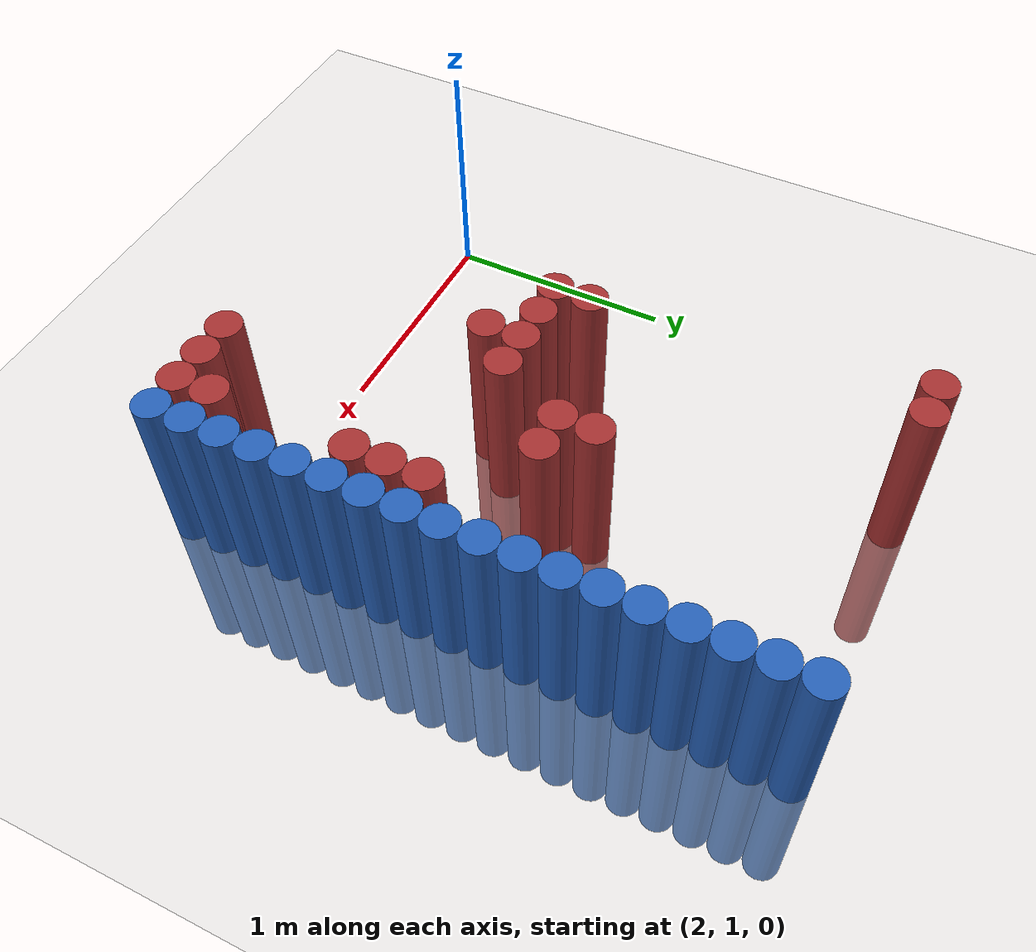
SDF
<sdf version="1.6">
 <world name="default">
  <model name="ground_plane">
   <static>1</static>
   <link name="link">
    <collision name="collision">
     <geometry><plane><normal>0 0 1</normal><size>100 100</size></plane></geometry>
     <surface><friction><ode><mu>100</mu><mu2>50</mu2></ode></friction></surface>
    </collision>
    <visual name="visual">
     <cast_shadows>0</cast_shadows>
     <geometry><plane><normal>0 0 1</normal><size>100 100</size></plane></geometry>
     <material>
      <script><uri>file://media/materials/scripts/gazebo.material</uri><name>Gazebo/Grey</name></script>
     </material>
    </visual>
   </link>
  </model>
  <model name="unit_cylinder_126">
   <static>1</static>
   <pose>3.925000 0.925000 0.000000 0.000000 0.000000 0.000000</pose>
   <link name="link">
    <inertial>
     <mass>1</mass>
     <inertia><ixx>0.145833</ixx><ixy>0</ixy><ixz>0</ixz><iyy>0.145833</iyy><iyz>0</iyz><izz>0.125</izz></inertia>
    </inertial>
    <collision name="collision">
     <geometry><cylinder><radius>0.075000</radius><length>1.5</length></cylinder></geometry>
    </collision>
    <visual name="visual">
     <geometry><cylinder><radius>0.075000</radius><length>1.5</length></cylinder></geometry>
     <material>
      <ambient>0.152000 0.379000 0.720000 1</ambient>
      <diffuse>0.152000 0.379000 0.720000 1</diffuse>
     </material>
     <material>
      <script><name>Gazebo/Grey</name><uri>file://media/materials/scripts/gazebo.material</uri></script>
     </material>
    </visual>
   </link>
  </model>
  <model name="unit_cylinder_128">
   <static>1</static>
   <pose>3.925000 1.075000 0.000000 0.000000 0.000000 0.000000</pose>
   <link name="link">
    <inertial>
     <mass>1</mass>
     <inertia><ixx>0.145833</ixx><ixy>0</ixy><ixz>0</ixz><iyy>0.145833</iyy><iyz>0</iyz><izz>0.125</izz></inertia>
    </inertial>
    <collision name="collision">
     <geometry><cylinder><radius>0.075000</radius><length>1.5</length></cylinder></geometry>
    </collision>
    <visual name="visual">
     <geometry><cylinder><radius>0.075000</radius><length>1.5</length></cylinder></geometry>
     <material>
      <ambient>0.152000 0.379000 0.720000 1</ambient>
      <diffuse>0.152000 0.379000 0.720000 1</diffuse>
     </material>
     <material>
      <script><name>Gazebo/Grey</name><uri>file://media/materials/scripts/gazebo.material</uri></script>
     </material>
    </visual>
   </link>
  </model>
  <model name="unit_cylinder_130">
   <static>1</static>
   <pose>3.925000 1.225000 0.000000 0.000000 0.000000 0.000000</pose>
   <link name="link">
    <inertial>
     <mass>1</mass>
     <inertia><ixx>0.145833</ixx><ixy>0</ixy><ixz>0</ixz><iyy>0.145833</iyy><iyz>0</iyz><izz>0.125</izz></inertia>
    </inertial>
    <collision name="collision">
     <geometry><cylinder><radius>0.075000</radius><length>1.5</length></cylinder></geometry>
    </collision>
    <visual name="visual">
     <geometry><cylinder><radius>0.075000</radius><length>1.5</length></cylinder></geometry>
     <material>
      <ambient>0.152000 0.379000 0.720000 1</ambient>
      <diffuse>0.152000 0.379000 0.720000 1</diffuse>
     </material>
     <material>
      <script><name>Gazebo/Grey</name><uri>file://media/materials/scripts/gazebo.material</uri></script>
     </material>
    </visual>
   </link>
  </model>
  <model name="unit_cylinder_132">
   <static>1</static>
   <pose>3.925000 1.375000 0.000000 0.000000 0.000000 0.000000</pose>
   <link name="link">
    <inertial>
     <mass>1</mass>
     <inertia><ixx>0.145833</ixx><ixy>0</ixy><ixz>0</ixz><iyy>0.145833</iyy><iyz>0</iyz><izz>0.125</izz></inertia>
    </inertial>
    <collision name="collision">
     <geometry><cylinder><radius>0.075000</radius><length>1.5</length></cylinder></geometry>
    </collision>
    <visual name="visual">
     <geometry><cylinder><radius>0.075000</radius><length>1.5</length></cylinder></geometry>
     <material>
      <ambient>0.152000 0.379000 0.720000 1</ambient>
      <diffuse>0.152000 0.379000 0.720000 1</diffuse>
     </material>
     <material>
      <script><name>Gazebo/Grey</name><uri>file://media/materials/scripts/gazebo.material</uri></script>
     </material>
    </visual>
   </link>
  </model>
  <model name="unit_cylinder_134">
   <static>1</static>
   <pose>3.925000 1.525000 0.000000 0.000000 0.000000 0.000000</pose>
   <link name="link">
    <inertial>
     <mass>1</mass>
     <inertia><ixx>0.145833</ixx><ixy>0</ixy><ixz>0</ixz><iyy>0.145833</iyy><iyz>0</iyz><izz>0.125</izz></inertia>
    </inertial>
    <collision name="collision">
     <geometry><cylinder><radius>0.075000</radius><length>1.5</length></cylinder></geometry>
    </collision>
    <visual name="visual">
     <geometry><cylinder><radius>0.075000</radius><length>1.5</length></cylinder></geometry>
     <material>
      <ambient>0.152000 0.379000 0.720000 1</ambient>
      <diffuse>0.152000 0.379000 0.720000 1</diffuse>
     </material>
     <material>
      <script><name>Gazebo/Grey</name><uri>file://media/materials/scripts/gazebo.material</uri></script>
     </material>
    </visual>
   </link>
  </model>
  <model name="unit_cylinder_136">
   <static>1</static>
   <pose>3.925000 1.675000 0.000000 0.000000 0.000000 0.000000</pose>
   <link name="link">
    <inertial>
     <mass>1</mass>
     <inertia><ixx>0.145833</ixx><ixy>0</ixy><ixz>0</ixz><iyy>0.145833</iyy><iyz>0</iyz><izz>0.125</izz></inertia>
    </inertial>
    <collision name="collision">
     <geometry><cylinder><radius>0.075000</radius><length>1.5</length></cylinder></geometry>
    </collision>
    <visual name="visual">
     <geometry><cylinder><radius>0.075000</radius><length>1.5</length></cylinder></geometry>
     <material>
      <ambient>0.152000 0.379000 0.720000 1</ambient>
      <diffuse>0.152000 0.379000 0.720000 1</diffuse>
     </material>
     <material>
      <script><name>Gazebo/Grey</name><uri>file://media/materials/scripts/gazebo.material</uri></script>
     </material>
    </visual>
   </link>
  </model>
  <model name="unit_cylinder_138">
   <static>1</static>
   <pose>3.925000 1.825000 0.000000 0.000000 0.000000 0.000000</pose>
   <link name="link">
    <inertial>
     <mass>1</mass>
     <inertia><ixx>0.145833</ixx><ixy>0</ixy><ixz>0</ixz><iyy>0.145833</iyy><iyz>0</iyz><izz>0.125</izz></inertia>
    </inertial>
    <collision name="collision">
     <geometry><cylinder><radius>0.075000</radius><length>1.5</length></cylinder></geometry>
    </collision>
    <visual name="visual">
     <geometry><cylinder><radius>0.075000</radius><length>1.5</length></cylinder></geometry>
     <material>
      <ambient>0.152000 0.379000 0.720000 1</ambient>
      <diffuse>0.152000 0.379000 0.720000 1</diffuse>
     </material>
     <material>
      <script><name>Gazebo/Grey</name><uri>file://media/materials/scripts/gazebo.material</uri></script>
     </material>
    </visual>
   </link>
  </model>
  <model name="unit_cylinder_140">
   <static>1</static>
   <pose>3.925000 1.975000 0.000000 0.000000 0.000000 0.000000</pose>
   <link name="link">
    <inertial>
     <mass>1</mass>
     <inertia><ixx>0.145833</ixx><ixy>0</ixy><ixz>0</ixz><iyy>0.145833</iyy><iyz>0</iyz><izz>0.125</izz></inertia>
    </inertial>
    <collision name="collision">
     <geometry><cylinder><radius>0.075000</radius><length>1.5</length></cylinder></geometry>
    </collision>
    <visual name="visual">
     <geometry><cylinder><radius>0.075000</radius><length>1.5</length></cylinder></geometry>
     <material>
      <ambient>0.152000 0.379000 0.720000 1</ambient>
      <diffuse>0.152000 0.379000 0.720000 1</diffuse>
     </material>
     <material>
      <script><name>Gazebo/Grey</name><uri>file://media/materials/scripts/gazebo.material</uri></script>
     </material>
    </visual>
   </link>
  </model>
  <model name="unit_cylinder_142">
   <static>1</static>
   <pose>3.925000 2.125000 0.000000 0.000000 0.000000 0.000000</pose>
   <link name="link">
    <inertial>
     <mass>1</mass>
     <inertia><ixx>0.145833</ixx><ixy>0</ixy><ixz>0</ixz><iyy>0.145833</iyy><iyz>0</iyz><izz>0.125</izz></inertia>
    </inertial>
    <collision name="collision">
     <geometry><cylinder><radius>0.075000</radius><length>1.5</length></cylinder></geometry>
    </collision>
    <visual name="visual">
     <geometry><cylinder><radius>0.075000</radius><length>1.5</length></cylinder></geometry>
     <material>
      <ambient>0.152000 0.379000 0.720000 1</ambient>
      <diffuse>0.152000 0.379000 0.720000 1</diffuse>
     </material>
     <material>
      <script><name>Gazebo/Grey</name><uri>file://media/materials/scripts/gazebo.material</uri></script>
     </material>
    </visual>
   </link>
  </model>
  <model name="unit_cylinder_144">
   <static>1</static>
   <pose>3.925000 2.275000 0.000000 0.000000 0.000000 0.000000</pose>
   <link name="link">
    <inertial>
     <mass>1</mass>
     <inertia><ixx>0.145833</ixx><ixy>0</ixy><ixz>0</ixz><iyy>0.145833</iyy><iyz>0</iyz><izz>0.125</izz></inertia>
    </inertial>
    <collision name="collision">
     <geometry><cylinder><radius>0.075000</radius><length>1.5</length></cylinder></geometry>
    </collision>
    <visual name="visual">
     <geometry><cylinder><radius>0.075000</radius><length>1.5</length></cylinder></geometry>
     <material>
      <ambient>0.152000 0.379000 0.720000 1</ambient>
      <diffuse>0.152000 0.379000 0.720000 1</diffuse>
     </material>
     <material>
      <script><name>Gazebo/Grey</name><uri>file://media/materials/scripts/gazebo.material</uri></script>
     </material>
    </visual>
   </link>
  </model>
  <model name="unit_cylinder_146">
   <static>1</static>
   <pose>3.925000 2.425000 0.000000 0.000000 0.000000 0.000000</pose>
   <link name="link">
    <inertial>
     <mass>1</mass>
     <inertia><ixx>0.145833</ixx><ixy>0</ixy><ixz>0</ixz><iyy>0.145833</iyy><iyz>0</iyz><izz>0.125</izz></inertia>
    </inertial>
    <collision name="collision">
     <geometry><cylinder><radius>0.075000</radius><length>1.5</length></cylinder></geometry>
    </collision>
    <visual name="visual">
     <geometry><cylinder><radius>0.075000</radius><length>1.5</length></cylinder></geometry>
     <material>
      <ambient>0.152000 0.379000 0.720000 1</ambient>
      <diffuse>0.152000 0.379000 0.720000 1</diffuse>
     </material>
     <material>
      <script><name>Gazebo/Grey</name><uri>file://media/materials/scripts/gazebo.material</uri></script>
     </material>
    </visual>
   </link>
  </model>
  <model name="unit_cylinder_148">
   <static>1</static>
   <pose>3.925000 2.575000 0.000000 0.000000 0.000000 0.000000</pose>
   <link name="link">
    <inertial>
     <mass>1</mass>
     <inertia><ixx>0.145833</ixx><ixy>0</ixy><ixz>0</ixz><iyy>0.145833</iyy><iyz>0</iyz><izz>0.125</izz></inertia>
    </inertial>
    <collision name="collision">
     <geometry><cylinder><radius>0.075000</radius><length>1.5</length></cylinder></geometry>
    </collision>
    <visual name="visual">
     <geometry><cylinder><radius>0.075000</radius><length>1.5</length></cylinder></geometry>
     <material>
      <ambient>0.152000 0.379000 0.720000 1</ambient>
      <diffuse>0.152000 0.379000 0.720000 1</diffuse>
     </material>
     <material>
      <script><name>Gazebo/Grey</name><uri>file://media/materials/scripts/gazebo.material</uri></script>
     </material>
    </visual>
   </link>
  </model>
  <model name="unit_cylinder_150">
   <static>1</static>
   <pose>3.925000 2.725000 0.000000 0.000000 0.000000 0.000000</pose>
   <link name="link">
    <inertial>
     <mass>1</mass>
     <inertia><ixx>0.145833</ixx><ixy>0</ixy><ixz>0</ixz><iyy>0.145833</iyy><iyz>0</iyz><izz>0.125</izz></inertia>
    </inertial>
    <collision name="collision">
     <geometry><cylinder><radius>0.075000</radius><length>1.5</length></cylinder></geometry>
    </collision>
    <visual name="visual">
     <geometry><cylinder><radius>0.075000</radius><length>1.5</length></cylinder></geometry>
     <material>
      <ambient>0.152000 0.379000 0.720000 1</ambient>
      <diffuse>0.152000 0.379000 0.720000 1</diffuse>
     </material>
     <material>
      <script><name>Gazebo/Grey</name><uri>file://media/materials/scripts/gazebo.material</uri></script>
     </material>
    </visual>
   </link>
  </model>
  <model name="unit_cylinder_152">
   <static>1</static>
   <pose>3.925000 2.875000 0.000000 0.000000 0.000000 0.000000</pose>
   <link name="link">
    <inertial>
     <mass>1</mass>
     <inertia><ixx>0.145833</ixx><ixy>0</ixy><ixz>0</ixz><iyy>0.145833</iyy><iyz>0</iyz><izz>0.125</izz></inertia>
    </inertial>
    <collision name="collision">
     <geometry><cylinder><radius>0.075000</radius><length>1.5</length></cylinder></geometry>
    </collision>
    <visual name="visual">
     <geometry><cylinder><radius>0.075000</radius><length>1.5</length></cylinder></geometry>
     <material>
      <ambient>0.152000 0.379000 0.720000 1</ambient>
      <diffuse>0.152000 0.379000 0.720000 1</diffuse>
     </material>
     <material>
      <script><name>Gazebo/Grey</name><uri>file://media/materials/scripts/gazebo.material</uri></script>
     </material>
    </visual>
   </link>
  </model>
  <model name="unit_cylinder_154">
   <static>1</static>
   <pose>3.925000 3.025000 0.000000 0.000000 0.000000 0.000000</pose>
   <link name="link">
    <inertial>
     <mass>1</mass>
     <inertia><ixx>0.145833</ixx><ixy>0</ixy><ixz>0</ixz><iyy>0.145833</iyy><iyz>0</iyz><izz>0.125</izz></inertia>
    </inertial>
    <collision name="collision">
     <geometry><cylinder><radius>0.075000</radius><length>1.5</length></cylinder></geometry>
    </collision>
    <visual name="visual">
     <geometry><cylinder><radius>0.075000</radius><length>1.5</length></cylinder></geometry>
     <material>
      <ambient>0.152000 0.379000 0.720000 1</ambient>
      <diffuse>0.152000 0.379000 0.720000 1</diffuse>
     </material>
     <material>
      <script><name>Gazebo/Grey</name><uri>file://media/materials/scripts/gazebo.material</uri></script>
     </material>
    </visual>
   </link>
  </model>
  <model name="unit_cylinder_156">
   <static>1</static>
   <pose>3.925000 3.175000 0.000000 0.000000 0.000000 0.000000</pose>
   <link name="link">
    <inertial>
     <mass>1</mass>
     <inertia><ixx>0.145833</ixx><ixy>0</ixy><ixz>0</ixz><iyy>0.145833</iyy><iyz>0</iyz><izz>0.125</izz></inertia>
    </inertial>
    <collision name="collision">
     <geometry><cylinder><radius>0.075000</radius><length>1.5</length></cylinder></geometry>
    </collision>
    <visual name="visual">
     <geometry><cylinder><radius>0.075000</radius><length>1.5</length></cylinder></geometry>
     <material>
      <ambient>0.152000 0.379000 0.720000 1</ambient>
      <diffuse>0.152000 0.379000 0.720000 1</diffuse>
     </material>
     <material>
      <script><name>Gazebo/Grey</name><uri>file://media/materials/scripts/gazebo.material</uri></script>
     </material>
    </visual>
   </link>
  </model>
  <model name="unit_cylinder_158">
   <static>1</static>
   <pose>3.925000 3.325000 0.000000 0.000000 0.000000 0.000000</pose>
   <link name="link">
    <inertial>
     <mass>1</mass>
     <inertia><ixx>0.145833</ixx><ixy>0</ixy><ixz>0</ixz><iyy>0.145833</iyy><iyz>0</iyz><izz>0.125</izz></inertia>
    </inertial>
    <collision name="collision">
     <geometry><cylinder><radius>0.075000</radius><length>1.5</length></cylinder></geometry>
    </collision>
    <visual name="visual">
     <geometry><cylinder><radius>0.075000</radius><length>1.5</length></cylinder></geometry>
     <material>
      <ambient>0.152000 0.379000 0.720000 1</ambient>
      <diffuse>0.152000 0.379000 0.720000 1</diffuse>
     </material>
     <material>
      <script><name>Gazebo/Grey</name><uri>file://media/materials/scripts/gazebo.material</uri></script>
     </material>
    </visual>
   </link>
  </model>
  <model name="unit_cylinder_573">
   <static>1</static>
   <pose>2.575000 3.325000 0.000000 0.000000 0.000000 0.000000</pose>
   <link name="link">
    <inertial>
     <mass>1</mass>
     <inertia><ixx>0.145833</ixx><ixy>0</ixy><ixz>0</ixz><iyy>0.145833</iyy><iyz>0</iyz><izz>0.125</izz></inertia>
    </inertial>
    <collision name="collision">
     <geometry><cylinder><radius>0.075000</radius><length>1.5</length></cylinder></geometry>
    </collision>
    <visual name="visual">
     <geometry><cylinder><radius>0.075000</radius><length>1.5</length></cylinder></geometry>
     <material>
      <ambient>0.648000 0.192000 0.192000 1</ambient>
      <diffuse>0.648000 0.192000 0.192000 1</diffuse>
     </material>
     <material>
      <script><name>Gazebo/Grey</name><uri>file://media/materials/scripts/gazebo.material</uri></script>
     </material>
    </visual>
   </link>
  </model>
  <model name="unit_cylinder_575">
   <static>1</static>
   <pose>2.725000 1.825000 0.000000 0.000000 0.000000 0.000000</pose>
   <link name="link">
    <inertial>
     <mass>1</mass>
     <inertia><ixx>0.145833</ixx><ixy>0</ixy><ixz>0</ixz><iyy>0.145833</iyy><iyz>0</iyz><izz>0.125</izz></inertia>
    </inertial>
    <collision name="collision">
     <geometry><cylinder><radius>0.075000</radius><length>1.5</length></cylinder></geometry>
    </collision>
    <visual name="visual">
     <geometry><cylinder><radius>0.075000</radius><length>1.5</length></cylinder></geometry>
     <material>
      <ambient>0.648000 0.192000 0.192000 1</ambient>
      <diffuse>0.648000 0.192000 0.192000 1</diffuse>
     </material>
     <material>
      <script><name>Gazebo/Grey</name><uri>file://media/materials/scripts/gazebo.material</uri></script>
     </material>
    </visual>
   </link>
  </model>
  <model name="unit_cylinder_576">
   <static>1</static>
   <pose>2.725000 1.975000 0.000000 0.000000 0.000000 0.000000</pose>
   <link name="link">
    <inertial>
     <mass>1</mass>
     <inertia><ixx>0.145833</ixx><ixy>0</ixy><ixz>0</ixz><iyy>0.145833</iyy><iyz>0</iyz><izz>0.125</izz></inertia>
    </inertial>
    <collision name="collision">
     <geometry><cylinder><radius>0.075000</radius><length>1.5</length></cylinder></geometry>
    </collision>
    <visual name="visual">
     <geometry><cylinder><radius>0.075000</radius><length>1.5</length></cylinder></geometry>
     <material>
      <ambient>0.648000 0.192000 0.192000 1</ambient>
      <diffuse>0.648000 0.192000 0.192000 1</diffuse>
     </material>
     <material>
      <script><name>Gazebo/Grey</name><uri>file://media/materials/scripts/gazebo.material</uri></script>
     </material>
    </visual>
   </link>
  </model>
  <model name="unit_cylinder_577">
   <static>1</static>
   <pose>2.725000 3.325000 0.000000 0.000000 0.000000 0.000000</pose>
   <link name="link">
    <inertial>
     <mass>1</mass>
     <inertia><ixx>0.145833</ixx><ixy>0</ixy><ixz>0</ixz><iyy>0.145833</iyy><iyz>0</iyz><izz>0.125</izz></inertia>
    </inertial>
    <collision name="collision">
     <geometry><cylinder><radius>0.075000</radius><length>1.5</length></cylinder></geometry>
    </collision>
    <visual name="visual">
     <geometry><cylinder><radius>0.075000</radius><length>1.5</length></cylinder></geometry>
     <material>
      <ambient>0.648000 0.192000 0.192000 1</ambient>
      <diffuse>0.648000 0.192000 0.192000 1</diffuse>
     </material>
     <material>
      <script><name>Gazebo/Grey</name><uri>file://media/materials/scripts/gazebo.material</uri></script>
     </material>
    </visual>
   </link>
  </model>
  <model name="unit_cylinder_580">
   <static>1</static>
   <pose>2.875000 1.825000 0.000000 0.000000 0.000000 0.000000</pose>
   <link name="link">
    <inertial>
     <mass>1</mass>
     <inertia><ixx>0.145833</ixx><ixy>0</ixy><ixz>0</ixz><iyy>0.145833</iyy><iyz>0</iyz><izz>0.125</izz></inertia>
    </inertial>
    <collision name="collision">
     <geometry><cylinder><radius>0.075000</radius><length>1.5</length></cylinder></geometry>
    </collision>
    <visual name="visual">
     <geometry><cylinder><radius>0.075000</radius><length>1.5</length></cylinder></geometry>
     <material>
      <ambient>0.648000 0.192000 0.192000 1</ambient>
      <diffuse>0.648000 0.192000 0.192000 1</diffuse>
     </material>
     <material>
      <script><name>Gazebo/Grey</name><uri>file://media/materials/scripts/gazebo.material</uri></script>
     </material>
    </visual>
   </link>
  </model>
  <model name="unit_cylinder_584">
   <static>1</static>
   <pose>3.025000 1.675000 0.000000 0.000000 0.000000 0.000000</pose>
   <link name="link">
    <inertial>
     <mass>1</mass>
     <inertia><ixx>0.145833</ixx><ixy>0</ixy><ixz>0</ixz><iyy>0.145833</iyy><iyz>0</iyz><izz>0.125</izz></inertia>
    </inertial>
    <collision name="collision">
     <geometry><cylinder><radius>0.075000</radius><length>1.5</length></cylinder></geometry>
    </collision>
    <visual name="visual">
     <geometry><cylinder><radius>0.075000</radius><length>1.5</length></cylinder></geometry>
     <material>
      <ambient>0.648000 0.192000 0.192000 1</ambient>
      <diffuse>0.648000 0.192000 0.192000 1</diffuse>
     </material>
     <material>
      <script><name>Gazebo/Grey</name><uri>file://media/materials/scripts/gazebo.material</uri></script>
     </material>
    </visual>
   </link>
  </model>
  <model name="unit_cylinder_585">
   <static>1</static>
   <pose>3.025000 1.825000 0.000000 0.000000 0.000000 0.000000</pose>
   <link name="link">
    <inertial>
     <mass>1</mass>
     <inertia><ixx>0.145833</ixx><ixy>0</ixy><ixz>0</ixz><iyy>0.145833</iyy><iyz>0</iyz><izz>0.125</izz></inertia>
    </inertial>
    <collision name="collision">
     <geometry><cylinder><radius>0.075000</radius><length>1.5</length></cylinder></geometry>
    </collision>
    <visual name="visual">
     <geometry><cylinder><radius>0.075000</radius><length>1.5</length></cylinder></geometry>
     <material>
      <ambient>0.648000 0.192000 0.192000 1</ambient>
      <diffuse>0.648000 0.192000 0.192000 1</diffuse>
     </material>
     <material>
      <script><name>Gazebo/Grey</name><uri>file://media/materials/scripts/gazebo.material</uri></script>
     </material>
    </visual>
   </link>
  </model>
  <model name="unit_cylinder_591">
   <static>1</static>
   <pose>3.175000 1.825000 0.000000 0.000000 0.000000 0.000000</pose>
   <link name="link">
    <inertial>
     <mass>1</mass>
     <inertia><ixx>0.145833</ixx><ixy>0</ixy><ixz>0</ixz><iyy>0.145833</iyy><iyz>0</iyz><izz>0.125</izz></inertia>
    </inertial>
    <collision name="collision">
     <geometry><cylinder><radius>0.075000</radius><length>1.5</length></cylinder></geometry>
    </collision>
    <visual name="visual">
     <geometry><cylinder><radius>0.075000</radius><length>1.5</length></cylinder></geometry>
     <material>
      <ambient>0.648000 0.192000 0.192000 1</ambient>
      <diffuse>0.648000 0.192000 0.192000 1</diffuse>
     </material>
     <material>
      <script><name>Gazebo/Grey</name><uri>file://media/materials/scripts/gazebo.material</uri></script>
     </material>
    </visual>
   </link>
  </model>
  <model name="unit_cylinder_598">
   <static>1</static>
   <pose>3.325000 2.125000 0.000000 0.000000 0.000000 0.000000</pose>
   <link name="link">
    <inertial>
     <mass>1</mass>
     <inertia><ixx>0.145833</ixx><ixy>0</ixy><ixz>0</ixz><iyy>0.145833</iyy><iyz>0</iyz><izz>0.125</izz></inertia>
    </inertial>
    <collision name="collision">
     <geometry><cylinder><radius>0.075000</radius><length>1.5</length></cylinder></geometry>
    </collision>
    <visual name="visual">
     <geometry><cylinder><radius>0.075000</radius><length>1.5</length></cylinder></geometry>
     <material>
      <ambient>0.648000 0.192000 0.192000 1</ambient>
      <diffuse>0.648000 0.192000 0.192000 1</diffuse>
     </material>
     <material>
      <script><name>Gazebo/Grey</name><uri>file://media/materials/scripts/gazebo.material</uri></script>
     </material>
    </visual>
   </link>
  </model>
  <model name="unit_cylinder_599">
   <static>1</static>
   <pose>3.325000 2.275000 0.000000 0.000000 0.000000 0.000000</pose>
   <link name="link">
    <inertial>
     <mass>1</mass>
     <inertia><ixx>0.145833</ixx><ixy>0</ixy><ixz>0</ixz><iyy>0.145833</iyy><iyz>0</iyz><izz>0.125</izz></inertia>
    </inertial>
    <collision name="collision">
     <geometry><cylinder><radius>0.075000</radius><length>1.5</length></cylinder></geometry>
    </collision>
    <visual name="visual">
     <geometry><cylinder><radius>0.075000</radius><length>1.5</length></cylinder></geometry>
     <material>
      <ambient>0.648000 0.192000 0.192000 1</ambient>
      <diffuse>0.648000 0.192000 0.192000 1</diffuse>
     </material>
     <material>
      <script><name>Gazebo/Grey</name><uri>file://media/materials/scripts/gazebo.material</uri></script>
     </material>
    </visual>
   </link>
  </model>
  <model name="unit_cylinder_611">
   <static>1</static>
   <pose>3.475000 0.775000 0.000000 0.000000 0.000000 0.000000</pose>
   <link name="link">
    <inertial>
     <mass>1</mass>
     <inertia><ixx>0.145833</ixx><ixy>0</ixy><ixz>0</ixz><iyy>0.145833</iyy><iyz>0</iyz><izz>0.125</izz></inertia>
    </inertial>
    <collision name="collision">
     <geometry><cylinder><radius>0.075000</radius><length>1.5</length></cylinder></geometry>
    </collision>
    <visual name="visual">
     <geometry><cylinder><radius>0.075000</radius><length>1.5</length></cylinder></geometry>
     <material>
      <ambient>0.648000 0.192000 0.192000 1</ambient>
      <diffuse>0.648000 0.192000 0.192000 1</diffuse>
     </material>
     <material>
      <script><name>Gazebo/Grey</name><uri>file://media/materials/scripts/gazebo.material</uri></script>
     </material>
    </visual>
   </link>
  </model>
  <model name="unit_cylinder_612">
   <static>1</static>
   <pose>3.475000 2.125000 0.000000 0.000000 0.000000 0.000000</pose>
   <link name="link">
    <inertial>
     <mass>1</mass>
     <inertia><ixx>0.145833</ixx><ixy>0</ixy><ixz>0</ixz><iyy>0.145833</iyy><iyz>0</iyz><izz>0.125</izz></inertia>
    </inertial>
    <collision name="collision">
     <geometry><cylinder><radius>0.075000</radius><length>1.5</length></cylinder></geometry>
    </collision>
    <visual name="visual">
     <geometry><cylinder><radius>0.075000</radius><length>1.5</length></cylinder></geometry>
     <material>
      <ambient>0.648000 0.192000 0.192000 1</ambient>
      <diffuse>0.648000 0.192000 0.192000 1</diffuse>
     </material>
     <material>
      <script><name>Gazebo/Grey</name><uri>file://media/materials/scripts/gazebo.material</uri></script>
     </material>
    </visual>
   </link>
  </model>
  <model name="unit_cylinder_623">
   <static>1</static>
   <pose>3.625000 0.775000 0.000000 0.000000 0.000000 0.000000</pose>
   <link name="link">
    <inertial>
     <mass>1</mass>
     <inertia><ixx>0.145833</ixx><ixy>0</ixy><ixz>0</ixz><iyy>0.145833</iyy><iyz>0</iyz><izz>0.125</izz></inertia>
    </inertial>
    <collision name="collision">
     <geometry><cylinder><radius>0.075000</radius><length>1.5</length></cylinder></geometry>
    </collision>
    <visual name="visual">
     <geometry><cylinder><radius>0.075000</radius><length>1.5</length></cylinder></geometry>
     <material>
      <ambient>0.648000 0.192000 0.192000 1</ambient>
      <diffuse>0.648000 0.192000 0.192000 1</diffuse>
     </material>
     <material>
      <script><name>Gazebo/Grey</name><uri>file://media/materials/scripts/gazebo.material</uri></script>
     </material>
    </visual>
   </link>
  </model>
  <model name="unit_cylinder_629">
   <static>1</static>
   <pose>3.775000 0.775000 0.000000 0.000000 0.000000 0.000000</pose>
   <link name="link">
    <inertial>
     <mass>1</mass>
     <inertia><ixx>0.145833</ixx><ixy>0</ixy><ixz>0</ixz><iyy>0.145833</iyy><iyz>0</iyz><izz>0.125</izz></inertia>
    </inertial>
    <collision name="collision">
     <geometry><cylinder><radius>0.075000</radius><length>1.5</length></cylinder></geometry>
    </collision>
    <visual name="visual">
     <geometry><cylinder><radius>0.075000</radius><length>1.5</length></cylinder></geometry>
     <material>
      <ambient>0.648000 0.192000 0.192000 1</ambient>
      <diffuse>0.648000 0.192000 0.192000 1</diffuse>
     </material>
     <material>
      <script><name>Gazebo/Grey</name><uri>file://media/materials/scripts/gazebo.material</uri></script>
     </material>
    </visual>
   </link>
  </model>
  <model name="unit_cylinder_630">
   <static>1</static>
   <pose>3.775000 0.925000 0.000000 0.000000 0.000000 0.000000</pose>
   <link name="link">
    <inertial>
     <mass>1</mass>
     <inertia><ixx>0.145833</ixx><ixy>0</ixy><ixz>0</ixz><iyy>0.145833</iyy><iyz>0</iyz><izz>0.125</izz></inertia>
    </inertial>
    <collision name="collision">
     <geometry><cylinder><radius>0.075000</radius><length>1.5</length></cylinder></geometry>
    </collision>
    <visual name="visual">
     <geometry><cylinder><radius>0.075000</radius><length>1.5</length></cylinder></geometry>
     <material>
      <ambient>0.648000 0.192000 0.192000 1</ambient>
      <diffuse>0.648000 0.192000 0.192000 1</diffuse>
     </material>
     <material>
      <script><name>Gazebo/Grey</name><uri>file://media/materials/scripts/gazebo.material</uri></script>
     </material>
    </visual>
   </link>
  </model>
  <model name="unit_cylinder_631">
   <static>1</static>
   <pose>3.775000 1.525000 0.000000 0.000000 0.000000 0.000000</pose>
   <link name="link">
    <inertial>
     <mass>1</mass>
     <inertia><ixx>0.145833</ixx><ixy>0</ixy><ixz>0</ixz><iyy>0.145833</iyy><iyz>0</iyz><izz>0.125</izz></inertia>
    </inertial>
    <collision name="collision">
     <geometry><cylinder><radius>0.075000</radius><length>1.5</length></cylinder></geometry>
    </collision>
    <visual name="visual">
     <geometry><cylinder><radius>0.075000</radius><length>1.5</length></cylinder></geometry>
     <material>
      <ambient>0.648000 0.192000 0.192000 1</ambient>
      <diffuse>0.648000 0.192000 0.192000 1</diffuse>
     </material>
     <material>
      <script><name>Gazebo/Grey</name><uri>file://media/materials/scripts/gazebo.material</uri></script>
     </material>
    </visual>
   </link>
  </model>
  <model name="unit_cylinder_632">
   <static>1</static>
   <pose>3.775000 1.675000 0.000000 0.000000 0.000000 0.000000</pose>
   <link name="link">
    <inertial>
     <mass>1</mass>
     <inertia><ixx>0.145833</ixx><ixy>0</ixy><ixz>0</ixz><iyy>0.145833</iyy><iyz>0</iyz><izz>0.125</izz></inertia>
    </inertial>
    <collision name="collision">
     <geometry><cylinder><radius>0.075000</radius><length>1.5</length></cylinder></geometry>
    </collision>
    <visual name="visual">
     <geometry><cylinder><radius>0.075000</radius><length>1.5</length></cylinder></geometry>
     <material>
      <ambient>0.648000 0.192000 0.192000 1</ambient>
      <diffuse>0.648000 0.192000 0.192000 1</diffuse>
     </material>
     <material>
      <script><name>Gazebo/Grey</name><uri>file://media/materials/scripts/gazebo.material</uri></script>
     </material>
    </visual>
   </link>
  </model>
  <model name="unit_cylinder_633">
   <static>1</static>
   <pose>3.775000 1.825000 0.000000 0.000000 0.000000 0.000000</pose>
   <link name="link">
    <inertial>
     <mass>1</mass>
     <inertia><ixx>0.145833</ixx><ixy>0</ixy><ixz>0</ixz><iyy>0.145833</iyy><iyz>0</iyz><izz>0.125</izz></inertia>
    </inertial>
    <collision name="collision">
     <geometry><cylinder><radius>0.075000</radius><length>1.5</length></cylinder></geometry>
    </collision>
    <visual name="visual">
     <geometry><cylinder><radius>0.075000</radius><length>1.5</length></cylinder></geometry>
     <material>
      <ambient>0.648000 0.192000 0.192000 1</ambient>
      <diffuse>0.648000 0.192000 0.192000 1</diffuse>
     </material>
     <material>
      <script><name>Gazebo/Grey</name><uri>file://media/materials/scripts/gazebo.material</uri></script>
     </material>
    </visual>
   </link>
  </model>
  <model name="unit_cylinder_656">
   <static>1</static>
   <pose>3.925000 0.775000 0.000000 0.000000 0.000000 0.000000</pose>
   <link name="link">
    <inertial>
     <mass>1</mass>
     <inertia><ixx>0.145833</ixx><ixy>0</ixy><ixz>0</ixz><iyy>0.145833</iyy><iyz>0</iyz><izz>0.125</izz></inertia>
    </inertial>
    <collision name="collision">
     <geometry><cylinder><radius>0.075000</radius><length>1.5</length></cylinder></geometry>
    </collision>
    <visual name="visual">
     <geometry><cylinder><radius>0.075000</radius><length>1.5</length></cylinder></geometry>
     <material>
      <ambient>0.152000 0.379000 0.720000 1</ambient>
      <diffuse>0.152000 0.379000 0.720000 1</diffuse>
     </material>
     <material>
      <script><name>Gazebo/Grey</name><uri>file://media/materials/scripts/gazebo.material</uri></script>
     </material>
    </visual>
   </link>
  </model>
  <model name="unit_cylinder_657">
   <static>1</static>
   <pose>3.925000 0.925000 0.000000 0.000000 0.000000 0.000000</pose>
   <link name="link">
    <inertial>
     <mass>1</mass>
     <inertia><ixx>0.145833</ixx><ixy>0</ixy><ixz>0</ixz><iyy>0.145833</iyy><iyz>0</iyz><izz>0.125</izz></inertia>
    </inertial>
    <collision name="collision">
     <geometry><cylinder><radius>0.075000</radius><length>1.5</length></cylinder></geometry>
    </collision>
    <visual name="visual">
     <geometry><cylinder><radius>0.075000</radius><length>1.5</length></cylinder></geometry>
     <material>
      <ambient>0.152000 0.379000 0.720000 1</ambient>
      <diffuse>0.152000 0.379000 0.720000 1</diffuse>
     </material>
     <material>
      <script><name>Gazebo/Grey</name><uri>file://media/materials/scripts/gazebo.material</uri></script>
     </material>
    </visual>
   </link>
  </model>
  <model name="unit_cylinder_658">
   <static>1</static>
   <pose>3.925000 1.075000 0.000000 0.000000 0.000000 0.000000</pose>
   <link name="link">
    <inertial>
     <mass>1</mass>
     <inertia><ixx>0.145833</ixx><ixy>0</ixy><ixz>0</ixz><iyy>0.145833</iyy><iyz>0</iyz><izz>0.125</izz></inertia>
    </inertial>
    <collision name="collision">
     <geometry><cylinder><radius>0.075000</radius><length>1.5</length></cylinder></geometry>
    </collision>
    <visual name="visual">
     <geometry><cylinder><radius>0.075000</radius><length>1.5</length></cylinder></geometry>
     <material>
      <ambient>0.152000 0.379000 0.720000 1</ambient>
      <diffuse>0.152000 0.379000 0.720000 1</diffuse>
     </material>
     <material>
      <script><name>Gazebo/Grey</name><uri>file://media/materials/scripts/gazebo.material</uri></script>
     </material>
    </visual>
   </link>
  </model>
  <model name="unit_cylinder_659">
   <static>1</static>
   <pose>3.925000 1.225000 0.000000 0.000000 0.000000 0.000000</pose>
   <link name="link">
    <inertial>
     <mass>1</mass>
     <inertia><ixx>0.145833</ixx><ixy>0</ixy><ixz>0</ixz><iyy>0.145833</iyy><iyz>0</iyz><izz>0.125</izz></inertia>
    </inertial>
    <collision name="collision">
     <geometry><cylinder><radius>0.075000</radius><length>1.5</length></cylinder></geometry>
    </collision>
    <visual name="visual">
     <geometry><cylinder><radius>0.075000</radius><length>1.5</length></cylinder></geometry>
     <material>
      <ambient>0.152000 0.379000 0.720000 1</ambient>
      <diffuse>0.152000 0.379000 0.720000 1</diffuse>
     </material>
     <material>
      <script><name>Gazebo/Grey</name><uri>file://media/materials/scripts/gazebo.material</uri></script>
     </material>
    </visual>
   </link>
  </model>
  <model name="unit_cylinder_660">
   <static>1</static>
   <pose>3.925000 1.375000 0.000000 0.000000 0.000000 0.000000</pose>
   <link name="link">
    <inertial>
     <mass>1</mass>
     <inertia><ixx>0.145833</ixx><ixy>0</ixy><ixz>0</ixz><iyy>0.145833</iyy><iyz>0</iyz><izz>0.125</izz></inertia>
    </inertial>
    <collision name="collision">
     <geometry><cylinder><radius>0.075000</radius><length>1.5</length></cylinder></geometry>
    </collision>
    <visual name="visual">
     <geometry><cylinder><radius>0.075000</radius><length>1.5</length></cylinder></geometry>
     <material>
      <ambient>0.152000 0.379000 0.720000 1</ambient>
      <diffuse>0.152000 0.379000 0.720000 1</diffuse>
     </material>
     <material>
      <script><name>Gazebo/Grey</name><uri>file://media/materials/scripts/gazebo.material</uri></script>
     </material>
    </visual>
   </link>
  </model>
  <model name="unit_cylinder_661">
   <static>1</static>
   <pose>3.925000 1.525000 0.000000 0.000000 0.000000 0.000000</pose>
   <link name="link">
    <inertial>
     <mass>1</mass>
     <inertia><ixx>0.145833</ixx><ixy>0</ixy><ixz>0</ixz><iyy>0.145833</iyy><iyz>0</iyz><izz>0.125</izz></inertia>
    </inertial>
    <collision name="collision">
     <geometry><cylinder><radius>0.075000</radius><length>1.5</length></cylinder></geometry>
    </collision>
    <visual name="visual">
     <geometry><cylinder><radius>0.075000</radius><length>1.5</length></cylinder></geometry>
     <material>
      <ambient>0.152000 0.379000 0.720000 1</ambient>
      <diffuse>0.152000 0.379000 0.720000 1</diffuse>
     </material>
     <material>
      <script><name>Gazebo/Grey</name><uri>file://media/materials/scripts/gazebo.material</uri></script>
     </material>
    </visual>
   </link>
  </model>
  <model name="unit_cylinder_662">
   <static>1</static>
   <pose>3.925000 1.675000 0.000000 0.000000 0.000000 0.000000</pose>
   <link name="link">
    <inertial>
     <mass>1</mass>
     <inertia><ixx>0.145833</ixx><ixy>0</ixy><ixz>0</ixz><iyy>0.145833</iyy><iyz>0</iyz><izz>0.125</izz></inertia>
    </inertial>
    <collision name="collision">
     <geometry><cylinder><radius>0.075000</radius><length>1.5</length></cylinder></geometry>
    </collision>
    <visual name="visual">
     <geometry><cylinder><radius>0.075000</radius><length>1.5</length></cylinder></geometry>
     <material>
      <ambient>0.152000 0.379000 0.720000 1</ambient>
      <diffuse>0.152000 0.379000 0.720000 1</diffuse>
     </material>
     <material>
      <script><name>Gazebo/Grey</name><uri>file://media/materials/scripts/gazebo.material</uri></script>
     </material>
    </visual>
   </link>
  </model>
  <model name="unit_cylinder_663">
   <static>1</static>
   <pose>3.925000 1.825000 0.000000 0.000000 0.000000 0.000000</pose>
   <link name="link">
    <inertial>
     <mass>1</mass>
     <inertia><ixx>0.145833</ixx><ixy>0</ixy><ixz>0</ixz><iyy>0.145833</iyy><iyz>0</iyz><izz>0.125</izz></inertia>
    </inertial>
    <collision name="collision">
     <geometry><cylinder><radius>0.075000</radius><length>1.5</length></cylinder></geometry>
    </collision>
    <visual name="visual">
     <geometry><cylinder><radius>0.075000</radius><length>1.5</length></cylinder></geometry>
     <material>
      <ambient>0.152000 0.379000 0.720000 1</ambient>
      <diffuse>0.152000 0.379000 0.720000 1</diffuse>
     </material>
     <material>
      <script><name>Gazebo/Grey</name><uri>file://media/materials/scripts/gazebo.material</uri></script>
     </material>
    </visual>
   </link>
  </model>
  <model name="unit_cylinder_664">
   <static>1</static>
   <pose>3.925000 1.975000 0.000000 0.000000 0.000000 0.000000</pose>
   <link name="link">
    <inertial>
     <mass>1</mass>
     <inertia><ixx>0.145833</ixx><ixy>0</ixy><ixz>0</ixz><iyy>0.145833</iyy><iyz>0</iyz><izz>0.125</izz></inertia>
    </inertial>
    <collision name="collision">
     <geometry><cylinder><radius>0.075000</radius><length>1.5</length></cylinder></geometry>
    </collision>
    <visual name="visual">
     <geometry><cylinder><radius>0.075000</radius><length>1.5</length></cylinder></geometry>
     <material>
      <ambient>0.152000 0.379000 0.720000 1</ambient>
      <diffuse>0.152000 0.379000 0.720000 1</diffuse>
     </material>
     <material>
      <script><name>Gazebo/Grey</name><uri>file://media/materials/scripts/gazebo.material</uri></script>
     </material>
    </visual>
   </link>
  </model>
  <model name="unit_cylinder_665">
   <static>1</static>
   <pose>3.925000 2.125000 0.000000 0.000000 0.000000 0.000000</pose>
   <link name="link">
    <inertial>
     <mass>1</mass>
     <inertia><ixx>0.145833</ixx><ixy>0</ixy><ixz>0</ixz><iyy>0.145833</iyy><iyz>0</iyz><izz>0.125</izz></inertia>
    </inertial>
    <collision name="collision">
     <geometry><cylinder><radius>0.075000</radius><length>1.5</length></cylinder></geometry>
    </collision>
    <visual name="visual">
     <geometry><cylinder><radius>0.075000</radius><length>1.5</length></cylinder></geometry>
     <material>
      <ambient>0.152000 0.379000 0.720000 1</ambient>
      <diffuse>0.152000 0.379000 0.720000 1</diffuse>
     </material>
     <material>
      <script><name>Gazebo/Grey</name><uri>file://media/materials/scripts/gazebo.material</uri></script>
     </material>
    </visual>
   </link>
  </model>
  <model name="unit_cylinder_666">
   <static>1</static>
   <pose>3.925000 2.275000 0.000000 0.000000 0.000000 0.000000</pose>
   <link name="link">
    <inertial>
     <mass>1</mass>
     <inertia><ixx>0.145833</ixx><ixy>0</ixy><ixz>0</ixz><iyy>0.145833</iyy><iyz>0</iyz><izz>0.125</izz></inertia>
    </inertial>
    <collision name="collision">
     <geometry><cylinder><radius>0.075000</radius><length>1.5</length></cylinder></geometry>
    </collision>
    <visual name="visual">
     <geometry><cylinder><radius>0.075000</radius><length>1.5</length></cylinder></geometry>
     <material>
      <ambient>0.152000 0.379000 0.720000 1</ambient>
      <diffuse>0.152000 0.379000 0.720000 1</diffuse>
     </material>
     <material>
      <script><name>Gazebo/Grey</name><uri>file://media/materials/scripts/gazebo.material</uri></script>
     </material>
    </visual>
   </link>
  </model>
  <model name="unit_cylinder_667">
   <static>1</static>
   <pose>3.925000 2.425000 0.000000 0.000000 0.000000 0.000000</pose>
   <link name="link">
    <inertial>
     <mass>1</mass>
     <inertia><ixx>0.145833</ixx><ixy>0</ixy><ixz>0</ixz><iyy>0.145833</iyy><iyz>0</iyz><izz>0.125</izz></inertia>
    </inertial>
    <collision name="collision">
     <geometry><cylinder><radius>0.075000</radius><length>1.5</length></cylinder></geometry>
    </collision>
    <visual name="visual">
     <geometry><cylinder><radius>0.075000</radius><length>1.5</length></cylinder></geometry>
     <material>
      <ambient>0.152000 0.379000 0.720000 1</ambient>
      <diffuse>0.152000 0.379000 0.720000 1</diffuse>
     </material>
     <material>
      <script><name>Gazebo/Grey</name><uri>file://media/materials/scripts/gazebo.material</uri></script>
     </material>
    </visual>
   </link>
  </model>
  <model name="unit_cylinder_668">
   <static>1</static>
   <pose>3.925000 2.575000 0.000000 0.000000 0.000000 0.000000</pose>
   <link name="link">
    <inertial>
     <mass>1</mass>
     <inertia><ixx>0.145833</ixx><ixy>0</ixy><ixz>0</ixz><iyy>0.145833</iyy><iyz>0</iyz><izz>0.125</izz></inertia>
    </inertial>
    <collision name="collision">
     <geometry><cylinder><radius>0.075000</radius><length>1.5</length></cylinder></geometry>
    </collision>
    <visual name="visual">
     <geometry><cylinder><radius>0.075000</radius><length>1.5</length></cylinder></geometry>
     <material>
      <ambient>0.152000 0.379000 0.720000 1</ambient>
      <diffuse>0.152000 0.379000 0.720000 1</diffuse>
     </material>
     <material>
      <script><name>Gazebo/Grey</name><uri>file://media/materials/scripts/gazebo.material</uri></script>
     </material>
    </visual>
   </link>
  </model>
  <model name="unit_cylinder_669">
   <static>1</static>
   <pose>3.925000 2.725000 0.000000 0.000000 0.000000 0.000000</pose>
   <link name="link">
    <inertial>
     <mass>1</mass>
     <inertia><ixx>0.145833</ixx><ixy>0</ixy><ixz>0</ixz><iyy>0.145833</iyy><iyz>0</iyz><izz>0.125</izz></inertia>
    </inertial>
    <collision name="collision">
     <geometry><cylinder><radius>0.075000</radius><length>1.5</length></cylinder></geometry>
    </collision>
    <visual name="visual">
     <geometry><cylinder><radius>0.075000</radius><length>1.5</length></cylinder></geometry>
     <material>
      <ambient>0.152000 0.379000 0.720000 1</ambient>
      <diffuse>0.152000 0.379000 0.720000 1</diffuse>
     </material>
     <material>
      <script><name>Gazebo/Grey</name><uri>file://media/materials/scripts/gazebo.material</uri></script>
     </material>
    </visual>
   </link>
  </model>
  <model name="unit_cylinder_670">
   <static>1</static>
   <pose>3.925000 2.875000 0.000000 0.000000 0.000000 0.000000</pose>
   <link name="link">
    <inertial>
     <mass>1</mass>
     <inertia><ixx>0.145833</ixx><ixy>0</ixy><ixz>0</ixz><iyy>0.145833</iyy><iyz>0</iyz><izz>0.125</izz></inertia>
    </inertial>
    <collision name="collision">
     <geometry><cylinder><radius>0.075000</radius><length>1.5</length></cylinder></geometry>
    </collision>
    <visual name="visual">
     <geometry><cylinder><radius>0.075000</radius><length>1.5</length></cylinder></geometry>
     <material>
      <ambient>0.152000 0.379000 0.720000 1</ambient>
      <diffuse>0.152000 0.379000 0.720000 1</diffuse>
     </material>
     <material>
      <script><name>Gazebo/Grey</name><uri>file://media/materials/scripts/gazebo.material</uri></script>
     </material>
    </visual>
   </link>
  </model>
  <model name="unit_cylinder_671">
   <static>1</static>
   <pose>3.925000 3.025000 0.000000 0.000000 0.000000 0.000000</pose>
   <link name="link">
    <inertial>
     <mass>1</mass>
     <inertia><ixx>0.145833</ixx><ixy>0</ixy><ixz>0</ixz><iyy>0.145833</iyy><iyz>0</iyz><izz>0.125</izz></inertia>
    </inertial>
    <collision name="collision">
     <geometry><cylinder><radius>0.075000</radius><length>1.5</length></cylinder></geometry>
    </collision>
    <visual name="visual">
     <geometry><cylinder><radius>0.075000</radius><length>1.5</length></cylinder></geometry>
     <material>
      <ambient>0.152000 0.379000 0.720000 1</ambient>
      <diffuse>0.152000 0.379000 0.720000 1</diffuse>
     </material>
     <material>
      <script><name>Gazebo/Grey</name><uri>file://media/materials/scripts/gazebo.material</uri></script>
     </material>
    </visual>
   </link>
  </model>
  <model name="unit_cylinder_672">
   <static>1</static>
   <pose>3.925000 3.175000 0.000000 0.000000 0.000000 0.000000</pose>
   <link name="link">
    <inertial>
     <mass>1</mass>
     <inertia><ixx>0.145833</ixx><ixy>0</ixy><ixz>0</ixz><iyy>0.145833</iyy><iyz>0</iyz><izz>0.125</izz></inertia>
    </inertial>
    <collision name="collision">
     <geometry><cylinder><radius>0.075000</radius><length>1.5</length></cylinder></geometry>
    </collision>
    <visual name="visual">
     <geometry><cylinder><radius>0.075000</radius><length>1.5</length></cylinder></geometry>
     <material>
      <ambient>0.152000 0.379000 0.720000 1</ambient>
      <diffuse>0.152000 0.379000 0.720000 1</diffuse>
     </material>
     <material>
      <script><name>Gazebo/Grey</name><uri>file://media/materials/scripts/gazebo.material</uri></script>
     </material>
    </visual>
   </link>
  </model>
  <model name="unit_cylinder_673">
   <static>1</static>
   <pose>3.925000 3.325000 0.000000 0.000000 0.000000 0.000000</pose>
   <link name="link">
    <inertial>
     <mass>1</mass>
     <inertia><ixx>0.145833</ixx><ixy>0</ixy><ixz>0</ixz><iyy>0.145833</iyy><iyz>0</iyz><izz>0.125</izz></inertia>
    </inertial>
    <collision name="collision">
     <geometry><cylinder><radius>0.075000</radius><length>1.5</length></cylinder></geometry>
    </collision>
    <visual name="visual">
     <geometry><cylinder><radius>0.075000</radius><length>1.5</length></cylinder></geometry>
     <material>
      <ambient>0.152000 0.379000 0.720000 1</ambient>
      <diffuse>0.152000 0.379000 0.720000 1</diffuse>
     </material>
     <material>
      <script><name>Gazebo/Grey</name><uri>file://media/materials/scripts/gazebo.material</uri></script>
     </material>
    </visual>
   </link>
  </model>
 </world>
</sdf>
